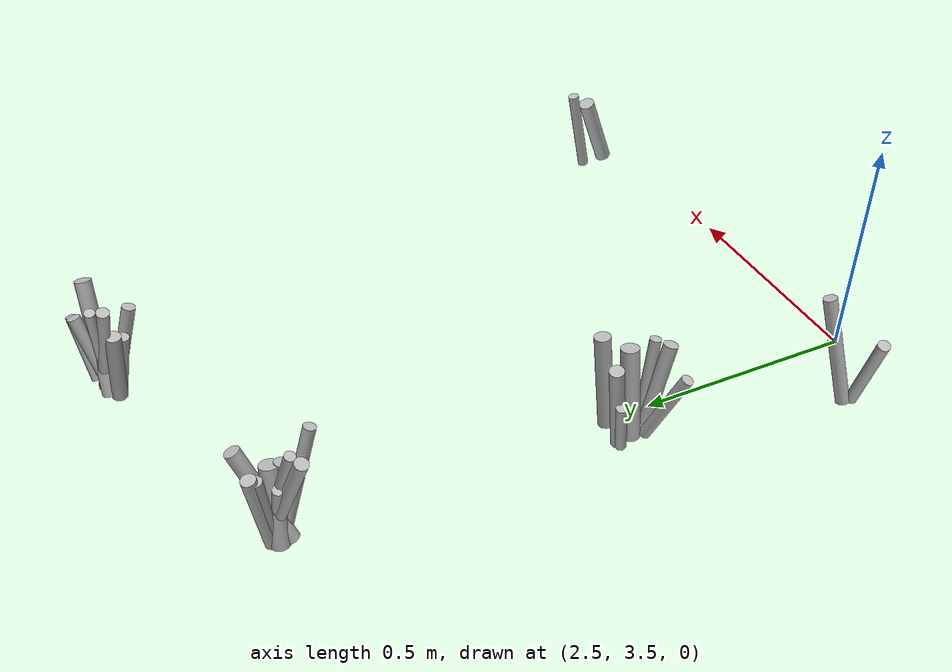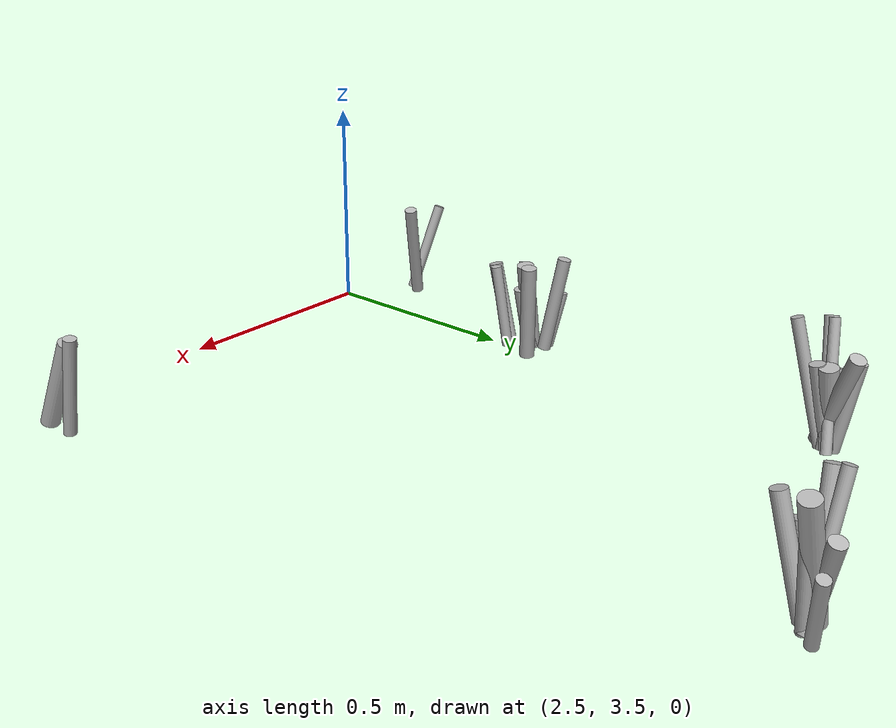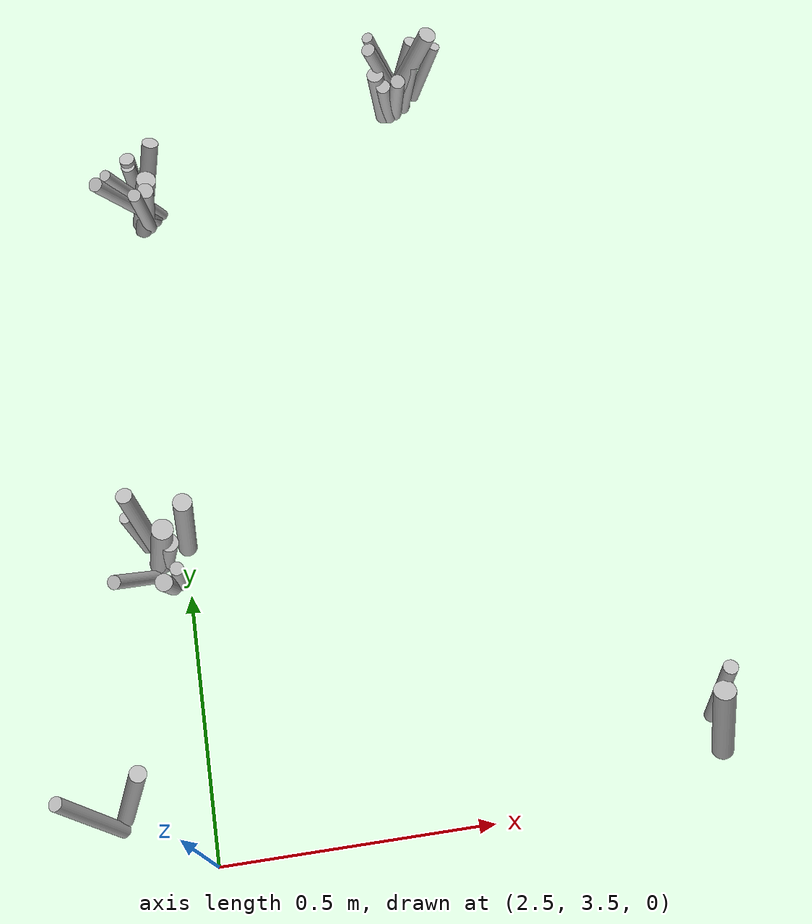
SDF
<sdf version="1.6">
 <world name="default">
  <model name="tussocks">
   <static>true</static>
   <link name="tuft22_0">
    <pose>2.4086 4.0248 0.0862 0 0.3975 3.9026</pose>
    <visual name="tuft22_0_v">
     <geometry><cylinder><radius>0.0130</radius><length>0.1873</length></cylinder></geometry>
     <material>
      <script>
       <uri>model://bushfire/materials/scripts</uri>
       <uri>model://bushfire/materials/textures</uri>
       <name>Bushfire/Tussock</name>
      </script>
     </material>
    </visual>
   </link>
   <link name="tuft22_1">
    <pose>2.5119 4.1085 0.1051 0 0.1130 0.5845</pose>
    <visual name="tuft22_1_v">
     <geometry><cylinder><radius>0.0177</radius><length>0.2284</length></cylinder></geometry>
     <material>
      <script>
       <uri>model://bushfire/materials/scripts</uri>
       <uri>model://bushfire/materials/textures</uri>
       <name>Bushfire/Foliage2</name>
      </script>
     </material>
    </visual>
   </link>
   <link name="tuft22_2">
    <pose>2.4694 4.0724 0.0708 0 0.1977 5.9464</pose>
    <visual name="tuft22_2_v">
     <geometry><cylinder><radius>0.0176</radius><length>0.1539</length></cylinder></geometry>
     <material>
      <script>
       <uri>model://bushfire/materials/scripts</uri>
       <uri>model://bushfire/materials/textures</uri>
       <name>Bushfire/Foliage2</name>
      </script>
     </material>
    </visual>
   </link>
   <link name="tuft22_3">
    <pose>2.4701 4.0042 0.0914 0 0.2296 4.8324</pose>
    <visual name="tuft22_3_v">
     <geometry><cylinder><radius>0.0160</radius><length>0.1987</length></cylinder></geometry>
     <material>
      <script>
       <uri>model://bushfire/materials/scripts</uri>
       <uri>model://bushfire/materials/textures</uri>
       <name>Bushfire/Foliage2</name>
      </script>
     </material>
    </visual>
   </link>
   <link name="tuft22_4">
    <pose>2.4645 4.0774 0.0627 0 0.2325 0.6488</pose>
    <visual name="tuft22_4_v">
     <geometry><cylinder><radius>0.0132</radius><length>0.1362</length></cylinder></geometry>
     <material>
      <script>
       <uri>model://bushfire/materials/scripts</uri>
       <uri>model://bushfire/materials/textures</uri>
       <name>Bushfire/Tussock</name>
      </script>
     </material>
    </visual>
   </link>
   <link name="tuft22_5">
    <pose>2.4911 4.0165 0.0922 0 0.1547 5.1790</pose>
    <visual name="tuft22_5_v">
     <geometry><cylinder><radius>0.0125</radius><length>0.2005</length></cylinder></geometry>
     <material>
      <script>
       <uri>model://bushfire/materials/scripts</uri>
       <uri>model://bushfire/materials/textures</uri>
       <name>Bushfire/Tussock</name>
      </script>
     </material>
    </visual>
   </link>
   <link name="tuft22_6">
    <pose>2.4306 4.1258 0.1062 0 0.1789 2.1197</pose>
    <visual name="tuft22_6_v">
     <geometry><cylinder><radius>0.0156</radius><length>0.2309</length></cylinder></geometry>
     <material>
      <script>
       <uri>model://bushfire/materials/scripts</uri>
       <uri>model://bushfire/materials/textures</uri>
       <name>Bushfire/Foliage2</name>
      </script>
     </material>
    </visual>
   </link>
   <link name="tuft22_7">
    <pose>2.4165 4.1217 0.0629 0 0.2247 2.3398</pose>
    <visual name="tuft22_7_v">
     <geometry><cylinder><radius>0.0117</radius><length>0.1368</length></cylinder></geometry>
     <material>
      <script>
       <uri>model://bushfire/materials/scripts</uri>
       <uri>model://bushfire/materials/textures</uri>
       <name>Bushfire/Tussock</name>
      </script>
     </material>
    </visual>
   </link>
   <link name="tuft22_8">
    <pose>2.4632 4.0752 0.0993 0 0.1668 6.2644</pose>
    <visual name="tuft22_8_v">
     <geometry><cylinder><radius>0.0199</radius><length>0.2159</length></cylinder></geometry>
     <material>
      <script>
       <uri>model://bushfire/materials/scripts</uri>
       <uri>model://bushfire/materials/textures</uri>
       <name>Bushfire/Tussock</name>
      </script>
     </material>
    </visual>
   </link>
   <link name="tuft36_0">
    <pose>2.3738 3.6272 0.1190 0 0.2991 0.5100</pose>
    <visual name="tuft36_0_v">
     <geometry><cylinder><radius>0.0151</radius><length>0.2587</length></cylinder></geometry>
     <material>
      <script>
       <uri>model://bushfire/materials/scripts</uri>
       <uri>model://bushfire/materials/textures</uri>
       <name>Bushfire/Tussock</name>
      </script>
     </material>
    </visual>
   </link>
   <link name="tuft36_7">
    <pose>2.3004 3.6052 0.1075 0 0.3564 2.7298</pose>
    <visual name="tuft36_7_v">
     <geometry><cylinder><radius>0.0130</radius><length>0.2338</length></cylinder></geometry>
     <material>
      <script>
       <uri>model://bushfire/materials/scripts</uri>
       <uri>model://bushfire/materials/textures</uri>
       <name>Bushfire/Tussock</name>
      </script>
     </material>
    </visual>
   </link>
   <link name="tuft50_0">
    <pose>3.0705 5.0284 0.1215 0 0.3257 6.2386</pose>
    <visual name="tuft50_0_v">
     <geometry><cylinder><radius>0.0180</radius><length>0.2642</length></cylinder></geometry>
     <material>
      <script>
       <uri>model://bushfire/materials/scripts</uri>
       <uri>model://bushfire/materials/textures</uri>
       <name>Bushfire/Foliage2</name>
      </script>
     </material>
    </visual>
   </link>
   <link name="tuft50_1">
    <pose>3.0606 5.0438 0.0881 0 0.3356 0.6842</pose>
    <visual name="tuft50_1_v">
     <geometry><cylinder><radius>0.0145</radius><length>0.1914</length></cylinder></geometry>
     <material>
      <script>
       <uri>model://bushfire/materials/scripts</uri>
       <uri>model://bushfire/materials/textures</uri>
       <name>Bushfire/Tussock</name>
      </script>
     </material>
    </visual>
   </link>
   <link name="tuft50_2">
    <pose>3.0291 5.0309 0.1227 0 0.2915 3.0488</pose>
    <visual name="tuft50_2_v">
     <geometry><cylinder><radius>0.0116</radius><length>0.2668</length></cylinder></geometry>
     <material>
      <script>
       <uri>model://bushfire/materials/scripts</uri>
       <uri>model://bushfire/materials/textures</uri>
       <name>Bushfire/Foliage2</name>
      </script>
     </material>
    </visual>
   </link>
   <link name="tuft50_3">
    <pose>3.1121 5.0581 0.0721 0 0.3340 0.3925</pose>
    <visual name="tuft50_3_v">
     <geometry><cylinder><radius>0.0114</radius><length>0.1567</length></cylinder></geometry>
     <material>
      <script>
       <uri>model://bushfire/materials/scripts</uri>
       <uri>model://bushfire/materials/textures</uri>
       <name>Bushfire/Tussock</name>
      </script>
     </material>
    </visual>
   </link>
   <link name="tuft50_4">
    <pose>3.0736 5.0224 0.0758 0 0.1164 6.0505</pose>
    <visual name="tuft50_4_v">
     <geometry><cylinder><radius>0.0114</radius><length>0.1648</length></cylinder></geometry>
     <material>
      <script>
       <uri>model://bushfire/materials/scripts</uri>
       <uri>model://bushfire/materials/textures</uri>
       <name>Bushfire/Foliage2</name>
      </script>
     </material>
    </visual>
   </link>
   <link name="tuft50_5">
    <pose>3.0097 5.0068 0.0813 0 0.1267 3.7384</pose>
    <visual name="tuft50_5_v">
     <geometry><cylinder><radius>0.0171</radius><length>0.1768</length></cylinder></geometry>
     <material>
      <script>
       <uri>model://bushfire/materials/scripts</uri>
       <uri>model://bushfire/materials/textures</uri>
       <name>Bushfire/Tussock</name>
      </script>
     </material>
    </visual>
   </link>
   <link name="tuft50_6">
    <pose>3.0419 4.9838 0.0995 0 0.2841 4.6834</pose>
    <visual name="tuft50_6_v">
     <geometry><cylinder><radius>0.0146</radius><length>0.2162</length></cylinder></geometry>
     <material>
      <script>
       <uri>model://bushfire/materials/scripts</uri>
       <uri>model://bushfire/materials/textures</uri>
       <name>Bushfire/Foliage2</name>
      </script>
     </material>
    </visual>
   </link>
   <link name="tuft50_7">
    <pose>3.0226 4.9953 0.0732 0 0.2011 4.1723</pose>
    <visual name="tuft50_7_v">
     <geometry><cylinder><radius>0.0149</radius><length>0.1592</length></cylinder></geometry>
     <material>
      <script>
       <uri>model://bushfire/materials/scripts</uri>
       <uri>model://bushfire/materials/textures</uri>
       <name>Bushfire/Foliage2</name>
      </script>
     </material>
    </visual>
   </link>
   <link name="tuft50_8">
    <pose>3.0245 5.0227 0.1196 0 0.2937 3.4938</pose>
    <visual name="tuft50_8_v">
     <geometry><cylinder><radius>0.0139</radius><length>0.2601</length></cylinder></geometry>
     <material>
      <script>
       <uri>model://bushfire/materials/scripts</uri>
       <uri>model://bushfire/materials/textures</uri>
       <name>Bushfire/Tussock</name>
      </script>
     </material>
    </visual>
   </link>
   <link name="tuft82_0">
    <pose>2.4930 4.7758 0.1239 0 0.2808 4.7450</pose>
    <visual name="tuft82_0_v">
     <geometry><cylinder><radius>0.0128</radius><length>0.2693</length></cylinder></geometry>
     <material>
      <script>
       <uri>model://bushfire/materials/scripts</uri>
       <uri>model://bushfire/materials/textures</uri>
       <name>Bushfire/Tussock</name>
      </script>
     </material>
    </visual>
   </link>
   <link name="tuft82_1">
    <pose>2.5038 4.8388 0.1075 0 0.4103 0.9513</pose>
    <visual name="tuft82_1_v">
     <geometry><cylinder><radius>0.0163</radius><length>0.2338</length></cylinder></geometry>
     <material>
      <script>
       <uri>model://bushfire/materials/scripts</uri>
       <uri>model://bushfire/materials/textures</uri>
       <name>Bushfire/Foliage2</name>
      </script>
     </material>
    </visual>
   </link>
   <link name="tuft82_2">
    <pose>2.4933 4.8213 0.0844 0 0.2006 6.1256</pose>
    <visual name="tuft82_2_v">
     <geometry><cylinder><radius>0.0196</radius><length>0.1835</length></cylinder></geometry>
     <material>
      <script>
       <uri>model://bushfire/materials/scripts</uri>
       <uri>model://bushfire/materials/textures</uri>
       <name>Bushfire/Tussock</name>
      </script>
     </material>
    </visual>
   </link>
   <link name="tuft82_3">
    <pose>2.4643 4.8052 0.1221 0 0.3932 3.6832</pose>
    <visual name="tuft82_3_v">
     <geometry><cylinder><radius>0.0142</radius><length>0.2654</length></cylinder></geometry>
     <material>
      <script>
       <uri>model://bushfire/materials/scripts</uri>
       <uri>model://bushfire/materials/textures</uri>
       <name>Bushfire/Tussock</name>
      </script>
     </material>
    </visual>
   </link>
   <link name="tuft82_4">
    <pose>2.4838 4.8207 0.0766 0 0.2876 3.2485</pose>
    <visual name="tuft82_4_v">
     <geometry><cylinder><radius>0.0111</radius><length>0.1665</length></cylinder></geometry>
     <material>
      <script>
       <uri>model://bushfire/materials/scripts</uri>
       <uri>model://bushfire/materials/textures</uri>
       <name>Bushfire/Foliage2</name>
      </script>
     </material>
    </visual>
   </link>
   <link name="tuft82_5">
    <pose>2.4823 4.8439 0.0851 0 0.1123 1.9611</pose>
    <visual name="tuft82_5_v">
     <geometry><cylinder><radius>0.0140</radius><length>0.1850</length></cylinder></geometry>
     <material>
      <script>
       <uri>model://bushfire/materials/scripts</uri>
       <uri>model://bushfire/materials/textures</uri>
       <name>Bushfire/Foliage2</name>
      </script>
     </material>
    </visual>
   </link>
   <link name="tuft82_6">
    <pose>2.4807 4.8154 0.1237 0 0.3431 3.6623</pose>
    <visual name="tuft82_6_v">
     <geometry><cylinder><radius>0.0112</radius><length>0.2689</length></cylinder></geometry>
     <material>
      <script>
       <uri>model://bushfire/materials/scripts</uri>
       <uri>model://bushfire/materials/textures</uri>
       <name>Bushfire/Foliage2</name>
      </script>
     </material>
    </visual>
   </link>
   <link name="tuft82_7">
    <pose>2.4977 4.8110 0.0844 0 0.2163 5.2476</pose>
    <visual name="tuft82_7_v">
     <geometry><cylinder><radius>0.0159</radius><length>0.1834</length></cylinder></geometry>
     <material>
      <script>
       <uri>model://bushfire/materials/scripts</uri>
       <uri>model://bushfire/materials/textures</uri>
       <name>Bushfire/Foliage2</name>
      </script>
     </material>
    </visual>
   </link>
   <link name="tuft82_8">
    <pose>2.4827 4.8509 0.0897 0 0.1517 1.8611</pose>
    <visual name="tuft82_8_v">
     <geometry><cylinder><radius>0.0152</radius><length>0.1949</length></cylinder></geometry>
     <material>
      <script>
       <uri>model://bushfire/materials/scripts</uri>
       <uri>model://bushfire/materials/textures</uri>
       <name>Bushfire/Tussock</name>
      </script>
     </material>
    </visual>
   </link>
   <link name="tuft183_1">
    <pose>3.4246 3.6057 0.0947 0 0.3871 1.8071</pose>
    <visual name="tuft183_1_v">
     <geometry><cylinder><radius>0.0200</radius><length>0.2059</length></cylinder></geometry>
     <material>
      <script>
       <uri>model://bushfire/materials/scripts</uri>
       <uri>model://bushfire/materials/textures</uri>
       <name>Bushfire/Foliage2</name>
      </script>
     </material>
    </visual>
   </link>
   <link name="tuft183_6">
    <pose>3.4290 3.6555 0.1033 0 0.1995 1.5701</pose>
    <visual name="tuft183_6_v">
     <geometry><cylinder><radius>0.0136</radius><length>0.2246</length></cylinder></geometry>
     <material>
      <script>
       <uri>model://bushfire/materials/scripts</uri>
       <uri>model://bushfire/materials/textures</uri>
       <name>Bushfire/Tussock</name>
      </script>
     </material>
    </visual>
   </link>
  </model>
 </world>
</sdf>
